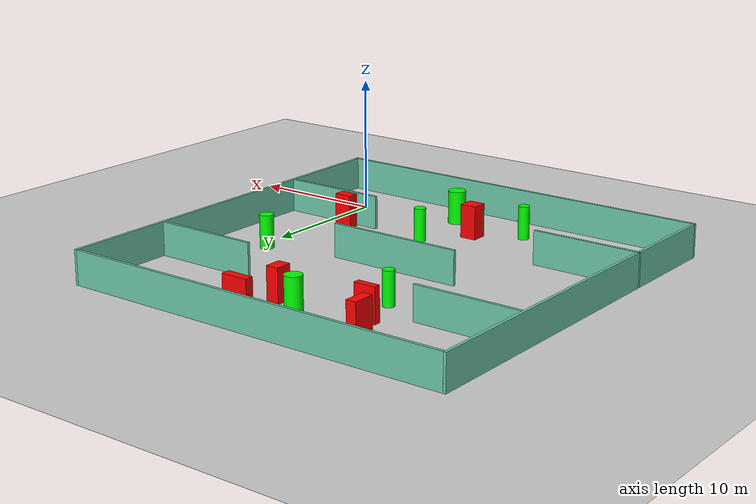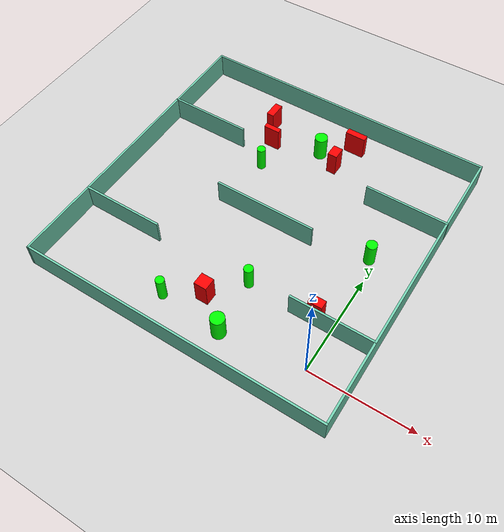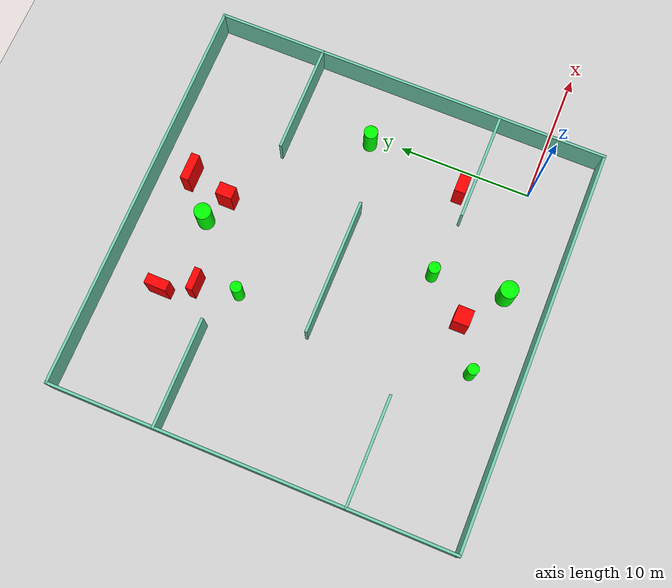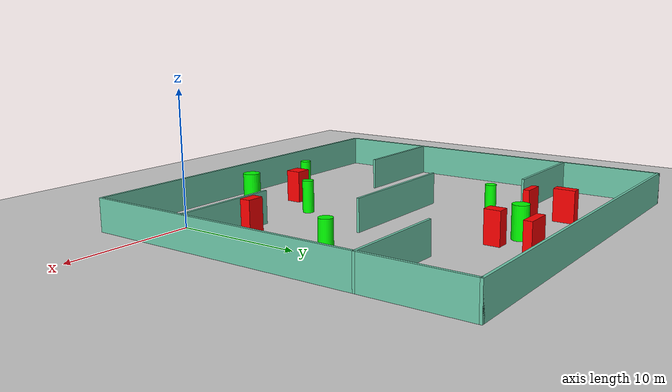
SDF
<sdf version="1.7">
 <world name="default">
  <light name="sun" type="directional">
   <pose>0 0 10 0 -0 0</pose>
   <diffuse>0.8 0.8 0.8 1</diffuse>
   <specular>0.2 0.2 0.2 1</specular>
   <attenuation>
    <range>1000</range>
    <constant>0.9</constant>
    <linear>0.01</linear>
    <quadratic>0.001</quadratic>
   </attenuation>
   <direction>-0.5 0.1 -0.9</direction>
   <spot><inner_angle>0</inner_angle><outer_angle>0</outer_angle><falloff>0</falloff></spot>
  </light>
  <model name="ground_plane">
   <static>1</static>
   <link name="link">
    <collision name="collision">
     <geometry><plane><normal>0 0 1</normal><size>100 100</size></plane></geometry>
     <surface>
      <contact><collide_bitmask>65535</collide_bitmask></contact>
      <friction><ode><mu>100</mu><mu2>50</mu2></ode></friction>
     </surface>
    </collision>
    <visual name="visual">
     <cast_shadows>0</cast_shadows>
     <geometry><plane><normal>0 0 1</normal><size>100 100</size></plane></geometry>
     <material>
      <script><uri>file://media/materials/scripts/gazebo.material</uri><name>Gazebo/Grey</name></script>
     </material>
    </visual>
   </link>
  </model>
  <gravity>0 0 -9.8</gravity>
  <magnetic_field>6e-06 2.3e-05 -4.2e-05</magnetic_field>
  <atmosphere type="adiabatic"/>
  <physics type="ode">
   <max_step_size>0.001</max_step_size>
   <real_time_factor>1</real_time_factor>
   <real_time_update_rate>1000</real_time_update_rate>
  </physics>
  <scene><ambient>0.4 0.4 0.4 1</ambient><background>0.7 0.7 0.7 1</background><shadows>1</shadows></scene>
  <spherical_coordinates>
   <surface_model>EARTH_WGS84</surface_model>
   <latitude_deg>0</latitude_deg>
   <longitude_deg>0</longitude_deg>
   <elevation>0</elevation>
   <heading_deg>0</heading_deg>
  </spherical_coordinates>
  <model name="my_base_walls">
   <link name="Wall_10">
    <collision name="Wall_10_Collision">
     <geometry><box><size>8.2 0.2 2.5</size></box></geometry>
     <pose>0 0 1.25 0 -0 0</pose>
    </collision>
    <visual name="Wall_10_Visual">
     <pose>0 0 1.25 0 -0 0</pose>
     <geometry><box><size>8.2 0.2 2.5</size></box></geometry>
     <material>
      <script><uri>file://media/materials/scripts/gazebo.material</uri><name>Gazebo/Grey</name></script>
      <ambient>0.435294 0.796078 0.67451 1</ambient>
     </material>
     <meta><layer>0</layer></meta>
    </visual>
    <pose>-11 -7 0 0 -0 0</pose>
   </link>
   <link name="Wall_12">
    <collision name="Wall_12_Collision">
     <geometry><box><size>8.2 0.2 2.5</size></box></geometry>
     <pose>0 0 1.25 0 -0 0</pose>
    </collision>
    <visual name="Wall_12_Visual">
     <pose>0 0 1.25 0 -0 0</pose>
     <geometry><box><size>8.2 0.2 2.5</size></box></geometry>
     <material>
      <script><uri>file://media/materials/scripts/gazebo.material</uri><name>Gazebo/Grey</name></script>
      <ambient>0.435294 0.796078 0.67451 1</ambient>
     </material>
     <meta><layer>0</layer></meta>
    </visual>
    <pose>-11 7 0 0 -0 0</pose>
   </link>
   <link name="Wall_14">
    <collision name="Wall_14_Collision">
     <geometry><box><size>8.2 0.2 2.5</size></box></geometry>
     <pose>0 0 1.25 0 -0 0</pose>
    </collision>
    <visual name="Wall_14_Visual">
     <pose>0 0 1.25 0 -0 0</pose>
     <geometry><box><size>8.2 0.2 2.5</size></box></geometry>
     <material>
      <script><uri>file://media/materials/scripts/gazebo.material</uri><name>Gazebo/Grey</name></script>
      <ambient>0.435294 0.796078 0.67451 1</ambient>
     </material>
     <meta><layer>0</layer></meta>
    </visual>
    <pose>11 7 0 0 -0 3.14159</pose>
   </link>
   <link name="Wall_16">
    <collision name="Wall_16_Collision">
     <geometry><box><size>10.2 0.2 2.5</size></box></geometry>
     <pose>0 0 1.25 0 -0 0</pose>
    </collision>
    <visual name="Wall_16_Visual">
     <pose>0 0 1.25 0 -0 0</pose>
     <geometry><box><size>10.2 0.2 2.5</size></box></geometry>
     <material>
      <script><uri>file://media/materials/scripts/gazebo.material</uri><name>Gazebo/Grey</name></script>
      <ambient>0.435294 0.796078 0.67451 1</ambient>
     </material>
     <meta><layer>0</layer></meta>
    </visual>
    <pose>0 0 0 0 -0 3.14159</pose>
   </link>
   <link name="Wall_2">
    <collision name="Wall_2_Collision">
     <geometry><box><size>30.2 0.2 2.5</size></box></geometry>
     <pose>0 0 1.25 0 -0 0</pose>
    </collision>
    <visual name="Wall_2_Visual">
     <pose>0 0 1.25 0 -0 0</pose>
     <geometry><box><size>30.2 0.2 2.5</size></box></geometry>
     <material>
      <script><uri>file://media/materials/scripts/gazebo.material</uri><name>Gazebo/Grey</name></script>
      <ambient>0.435294 0.796078 0.67451 1</ambient>
     </material>
     <meta><layer>0</layer></meta>
    </visual>
    <pose>0 -15 0 0 -0 3.14159</pose>
   </link>
   <link name="Wall_3">
    <collision name="Wall_3_Collision">
     <geometry><box><size>30.2 0.2 2.5</size></box></geometry>
     <pose>0 0 1.25 0 -0 0</pose>
    </collision>
    <visual name="Wall_3_Visual">
     <pose>0 0 1.25 0 -0 0</pose>
     <geometry><box><size>30.2 0.2 2.5</size></box></geometry>
     <material>
      <script><uri>file://media/materials/scripts/gazebo.material</uri><name>Gazebo/Grey</name></script>
      <ambient>0.435294 0.796078 0.67451 1</ambient>
     </material>
     <meta><layer>0</layer></meta>
    </visual>
    <pose>-15 0 0 0 -0 1.5708</pose>
   </link>
   <link name="Wall_4">
    <collision name="Wall_4_Collision">
     <geometry><box><size>30.2 0.2 2.5</size></box></geometry>
     <pose>0 0 1.25 0 -0 0</pose>
    </collision>
    <visual name="Wall_4_Visual">
     <pose>0 0 1.25 0 -0 0</pose>
     <geometry><box><size>30.2 0.2 2.5</size></box></geometry>
     <material>
      <script><uri>file://media/materials/scripts/gazebo.material</uri><name>Gazebo/Grey</name></script>
      <ambient>0.435294 0.796078 0.67451 1</ambient>
     </material>
     <meta><layer>0</layer></meta>
    </visual>
    <pose>0 15 0 0 -0 0</pose>
   </link>
   <link name="Wall_6">
    <collision name="Wall_6_Collision">
     <geometry><box><size>30.2 0.2 2.5</size></box></geometry>
     <pose>0 0 1.25 0 -0 0</pose>
    </collision>
    <visual name="Wall_6_Visual">
     <pose>0 0 1.25 0 -0 0</pose>
     <geometry><box><size>30.2 0.2 2.5</size></box></geometry>
     <material>
      <script><uri>file://media/materials/scripts/gazebo.material</uri><name>Gazebo/Grey</name></script>
      <ambient>0.435294 0.796078 0.67451 1</ambient>
     </material>
     <meta><layer>0</layer></meta>
    </visual>
    <pose>15 0 0 0 -0 1.5708</pose>
   </link>
   <link name="Wall_8">
    <collision name="Wall_8_Collision">
     <geometry><box><size>8.2 0.2 2.5</size></box></geometry>
     <pose>0 0 1.25 0 -0 0</pose>
    </collision>
    <visual name="Wall_8_Visual">
     <pose>0 0 1.25 0 -0 0</pose>
     <geometry><box><size>8.2 0.2 2.5</size></box></geometry>
     <material>
      <script><uri>file://media/materials/scripts/gazebo.material</uri><name>Gazebo/Grey</name></script>
      <ambient>0.435294 0.796078 0.67451 1</ambient>
     </material>
     <meta><layer>0</layer></meta>
    </visual>
    <pose>11 -7 0 0 -0 3.14159</pose>
   </link>
   <static>1</static>
   <pose>-11 11 0 0 -0 0</pose>
  </model>
  <model name="cylinder1">
   <static>1</static>
   <link name="link">
    <inertial>
     <mass>1</mass>
     <inertia><ixx>0.5</ixx><ixy>0</ixy><ixz>0</ixz><iyy>0.5</iyy><iyz>0</iyz><izz>1</izz></inertia>
    </inertial>
    <collision name="collision">
     <geometry><cylinder><radius>0.42352935887081267</radius><length>2.5</length></cylinder></geometry>
    </collision>
    <visual name="visual">
     <geometry><cylinder><radius>0.42352935887081267</radius><length>2.5</length></cylinder></geometry>
     <material>
      <ambient>0 1 0 1</ambient>
      <diffuse>0 1 0 1</diffuse>
      <specular>0.1 0.1 0.1 1</specular>
      <emissive>0 0 0 0</emissive>
     </material>
    </visual>
   </link>
   <pose>-14.97800656150729 16.737730221356482 1.25 0 0 0</pose>
  </model>
  <model name="cylinder2">
   <static>1</static>
   <link name="link">
    <inertial>
     <mass>1</mass>
     <inertia><ixx>0.5</ixx><ixy>0</ixy><ixz>0</ixz><iyy>0.5</iyy><iyz>0</iyz><izz>1</izz></inertia>
    </inertial>
    <collision name="collision">
     <geometry><cylinder><radius>0.43801430923661044</radius><length>2.5</length></cylinder></geometry>
    </collision>
    <visual name="visual">
     <geometry><cylinder><radius>0.43801430923661044</radius><length>2.5</length></cylinder></geometry>
     <material>
      <ambient>0 1 0 1</ambient>
      <diffuse>0 1 0 1</diffuse>
      <specular>0.1 0.1 0.1 1</specular>
      <emissive>0 0 0 0</emissive>
     </material>
    </visual>
   </link>
   <pose>-8.428461205101566 4.422043066342369 1.25 0 0 0</pose>
  </model>
  <model name="cylinder3">
   <static>1</static>
   <link name="link">
    <inertial>
     <mass>1</mass>
     <inertia><ixx>0.5</ixx><ixy>0</ixy><ixz>0</ixz><iyy>0.5</iyy><iyz>0</iyz><izz>1</izz></inertia>
    </inertial>
    <collision name="collision">
     <geometry><cylinder><radius>0.5159672759281273</radius><length>2.5</length></cylinder></geometry>
    </collision>
    <visual name="visual">
     <geometry><cylinder><radius>0.5159672759281273</radius><length>2.5</length></cylinder></geometry>
     <material>
      <ambient>0 1 0 1</ambient>
      <diffuse>0 1 0 1</diffuse>
      <specular>0.1 0.1 0.1 1</specular>
      <emissive>0 0 0 0</emissive>
     </material>
    </visual>
   </link>
   <pose>-0.6335989852126076 12.316887169525819 1.25 0 0 0</pose>
  </model>
  <model name="cylinder4">
   <static>1</static>
   <link name="link">
    <inertial>
     <mass>1</mass>
     <inertia><ixx>0.5</ixx><ixy>0</ixy><ixz>0</ixz><iyy>0.5</iyy><iyz>0</iyz><izz>1</izz></inertia>
    </inertial>
    <collision name="collision">
     <geometry><cylinder><radius>0.41581200933465357</radius><length>2.5</length></cylinder></geometry>
    </collision>
    <visual name="visual">
     <geometry><cylinder><radius>0.41581200933465357</radius><length>2.5</length></cylinder></geometry>
     <material>
      <ambient>0 1 0 1</ambient>
      <diffuse>0 1 0 1</diffuse>
      <specular>0.1 0.1 0.1 1</specular>
      <emissive>0 0 0 0</emissive>
     </material>
    </visual>
   </link>
   <pose>-14.151051876238007 -0.5720716901145675 1.25 0 0 0</pose>
  </model>
  <model name="cylinder5">
   <static>1</static>
   <link name="link">
    <inertial>
     <mass>1</mass>
     <inertia><ixx>0.5</ixx><ixy>0</ixy><ixz>0</ixz><iyy>0.5</iyy><iyz>0</iyz><izz>1</izz></inertia>
    </inertial>
    <collision name="collision">
     <geometry><cylinder><radius>0.6289985383766765</radius><length>2.5</length></cylinder></geometry>
    </collision>
    <visual name="visual">
     <geometry><cylinder><radius>0.6289985383766765</radius><length>2.5</length></cylinder></geometry>
     <material>
      <ambient>0 1 0 1</ambient>
      <diffuse>0 1 0 1</diffuse>
      <specular>0.1 0.1 0.1 1</specular>
      <emissive>0 0 0 0</emissive>
     </material>
    </visual>
   </link>
   <pose>-10.785315225139026 21.18249637623107 1.25 0 0 0</pose>
  </model>
  <model name="cylinder6">
   <static>1</static>
   <link name="link">
    <inertial>
     <mass>1</mass>
     <inertia><ixx>0.5</ixx><ixy>0</ixy><ixz>0</ixz><iyy>0.5</iyy><iyz>0</iyz><izz>1</izz></inertia>
    </inertial>
    <collision name="collision">
     <geometry><cylinder><radius>0.6627199856551791</radius><length>2.5</length></cylinder></geometry>
    </collision>
    <visual name="visual">
     <geometry><cylinder><radius>0.6627199856551791</radius><length>2.5</length></cylinder></geometry>
     <material>
      <ambient>0 1 0 1</ambient>
      <diffuse>0 1 0 1</diffuse>
      <specular>0.1 0.1 0.1 1</specular>
      <emissive>0 0 0 0</emissive>
     </material>
    </visual>
   </link>
   <pose>-7.937127904762349 -0.9799454734982915 1.25 0 0 0</pose>
  </model>
  <model name="box1">
   <static>1</static>
   <link name="link">
    <inertial>
     <mass>1</mass>
     <inertia><ixx>0.083</ixx><ixy>0</ixy><ixz>0</ixz><iyy>0.083</iyy><iyz>0</iyz><izz>0.083</izz></inertia>
    </inertial>
    <collision name="collision">
     <geometry><box><size>1.650230286772829 0.5063859732659353 2.5</size></box></geometry>
    </collision>
    <visual name="visual">
     <geometry><box><size>1.650230286772829 0.5063859732659353 2.5</size></box></geometry>
     <material>
      <ambient>1 0 0 1</ambient>
      <diffuse>1 0 0 1</diffuse>
      <specular>0.1 0.1 0.1 1</specular>
      <emissive>0 0 0 0</emissive>
     </material>
    </visual>
    <sensor name="my_contact" type="contact">
     <contact><collision>box_collision</collision><topic>__default_topic__</topic></contact>
    </sensor>
   </link>
   <pose>-15.554013400381006 19.744393851975317 1.25 0 0 0</pose>
  </model>
  <model name="box2">
   <static>1</static>
   <link name="link">
    <inertial>
     <mass>1</mass>
     <inertia><ixx>0.083</ixx><ixy>0</ixy><ixz>0</ixz><iyy>0.083</iyy><iyz>0</iyz><izz>0.083</izz></inertia>
    </inertial>
    <collision name="collision">
     <geometry><box><size>0.9477676447718977 1.245186331635736 2.5</size></box></geometry>
    </collision>
    <visual name="visual">
     <geometry><box><size>0.9477676447718977 1.245186331635736 2.5</size></box></geometry>
     <material>
      <ambient>1 0 0 1</ambient>
      <diffuse>1 0 0 1</diffuse>
      <specular>0.1 0.1 0.1 1</specular>
      <emissive>0 0 0 0</emissive>
     </material>
    </visual>
    <sensor name="my_contact" type="contact">
     <contact><collision>box_collision</collision><topic>__default_topic__</topic></contact>
    </sensor>
   </link>
   <pose>-8.731114336828863 20.281262365972356 1.25 0 0 0</pose>
  </model>
  <model name="box3">
   <static>1</static>
   <link name="link">
    <inertial>
     <mass>1</mass>
     <inertia><ixx>0.083</ixx><ixy>0</ixy><ixz>0</ixz><iyy>0.083</iyy><iyz>0</iyz><izz>0.083</izz></inertia>
    </inertial>
    <collision name="collision">
     <geometry><box><size>0.754675050332058 1.6651368545837484 2.5</size></box></geometry>
    </collision>
    <visual name="visual">
     <geometry><box><size>0.754675050332058 1.6651368545837484 2.5</size></box></geometry>
     <material>
      <ambient>1 0 0 1</ambient>
      <diffuse>1 0 0 1</diffuse>
      <specular>0.1 0.1 0.1 1</specular>
      <emissive>0 0 0 0</emissive>
     </material>
    </visual>
    <sensor name="my_contact" type="contact">
     <contact><collision>box_collision</collision><topic>__default_topic__</topic></contact>
    </sensor>
   </link>
   <pose>-16.747954976554194 21.997183597574175 1.25 0 0 0</pose>
  </model>
  <model name="box4">
   <static>1</static>
   <link name="link">
    <inertial>
     <mass>1</mass>
     <inertia><ixx>0.083</ixx><ixy>0</ixy><ixz>0</ixz><iyy>0.083</iyy><iyz>0</iyz><izz>0.083</izz></inertia>
    </inertial>
    <collision name="collision">
     <geometry><box><size>1.3432117584869734 0.8365087386536811 2.5</size></box></geometry>
    </collision>
    <visual name="visual">
     <geometry><box><size>1.3432117584869734 0.8365087386536811 2.5</size></box></geometry>
     <material>
      <ambient>1 0 0 1</ambient>
      <diffuse>1 0 0 1</diffuse>
      <specular>0.1 0.1 0.1 1</specular>
      <emissive>0 0 0 0</emissive>
     </material>
    </visual>
    <sensor name="my_contact" type="contact">
     <contact><collision>box_collision</collision><topic>__default_topic__</topic></contact>
    </sensor>
   </link>
   <pose>-1.8382687916369242 4.7514522563275 1.25 0 0 0</pose>
  </model>
  <model name="box5">
   <static>1</static>
   <link name="link">
    <inertial>
     <mass>1</mass>
     <inertia><ixx>0.083</ixx><ixy>0</ixy><ixz>0</ixz><iyy>0.083</iyy><iyz>0</iyz><izz>0.083</izz></inertia>
    </inertial>
    <collision name="collision">
     <geometry><box><size>2.0383389354541213 0.6388671329535415 2.5</size></box></geometry>
    </collision>
    <visual name="visual">
     <geometry><box><size>2.0383389354541213 0.6388671329535415 2.5</size></box></geometry>
     <material>
      <ambient>1 0 0 1</ambient>
      <diffuse>1 0 0 1</diffuse>
      <specular>0.1 0.1 0.1 1</specular>
      <emissive>0 0 0 0</emissive>
     </material>
    </visual>
    <sensor name="my_contact" type="contact">
     <contact><collision>box_collision</collision><topic>__default_topic__</topic></contact>
    </sensor>
   </link>
   <pose>-8.046625688760436 23.40929473805804 1.25 0 0 0</pose>
  </model>
  <model name="box6">
   <static>1</static>
   <link name="link">
    <inertial>
     <mass>1</mass>
     <inertia><ixx>0.083</ixx><ixy>0</ixy><ixz>0</ixz><iyy>0.083</iyy><iyz>0</iyz><izz>0.083</izz></inertia>
    </inertial>
    <collision name="collision">
     <geometry><box><size>1.247556503011265 1.1982863212166284 2.5</size></box></geometry>
    </collision>
    <visual name="visual">
     <geometry><box><size>1.247556503011265 1.1982863212166284 2.5</size></box></geometry>
     <material>
      <ambient>1 0 0 1</ambient>
      <diffuse>1 0 0 1</diffuse>
      <specular>0.1 0.1 0.1 1</specular>
      <emissive>0 0 0 0</emissive>
     </material>
    </visual>
    <sensor name="my_contact" type="contact">
     <contact><collision>box_collision</collision><topic>__default_topic__</topic></contact>
    </sensor>
   </link>
   <pose>-10.908929893371743 1.320334218749334 1.25 0 0 0</pose>
  </model>
 </world>
</sdf>
